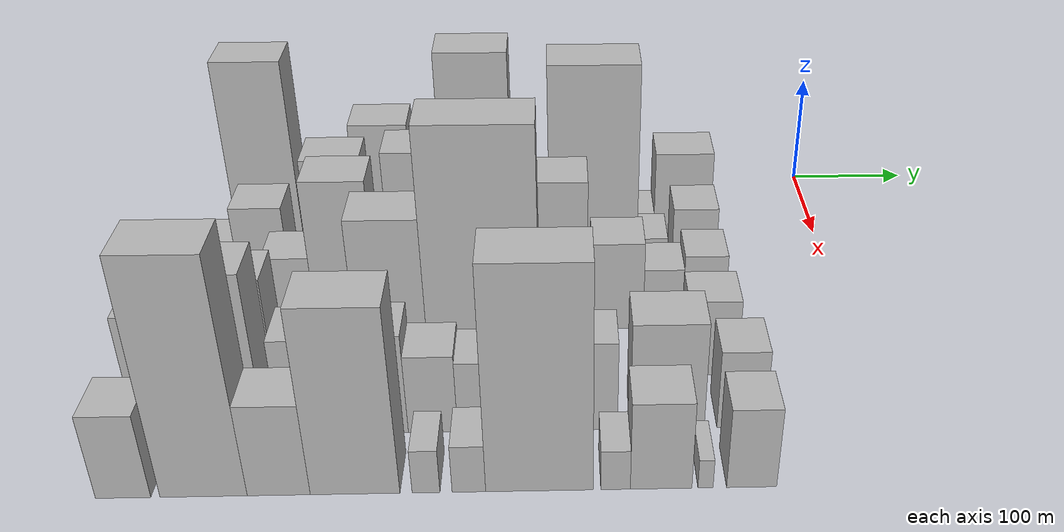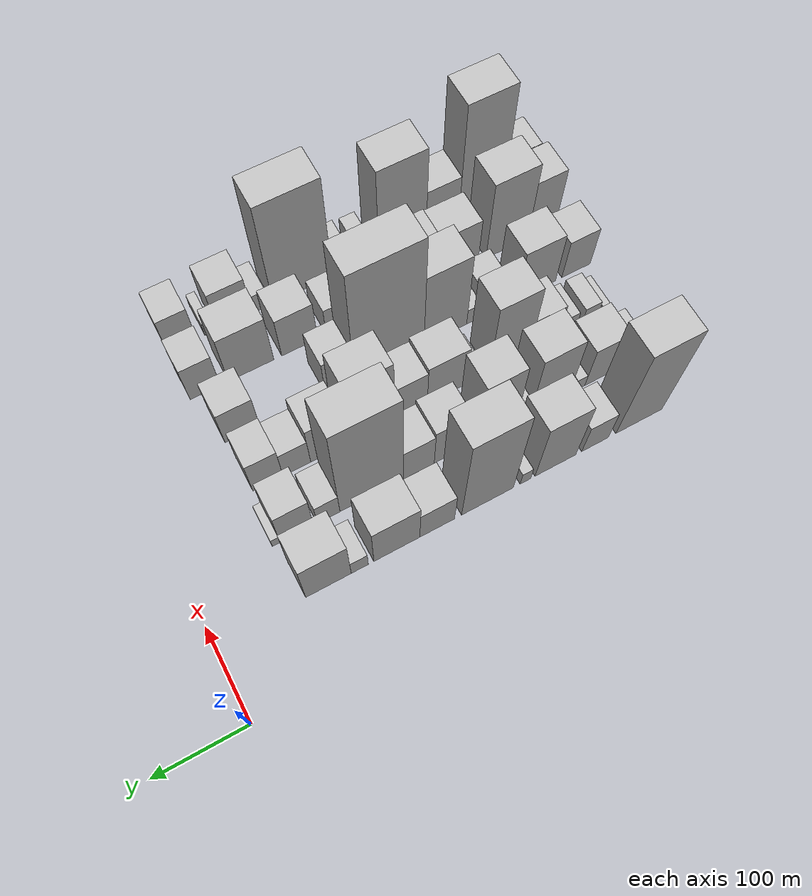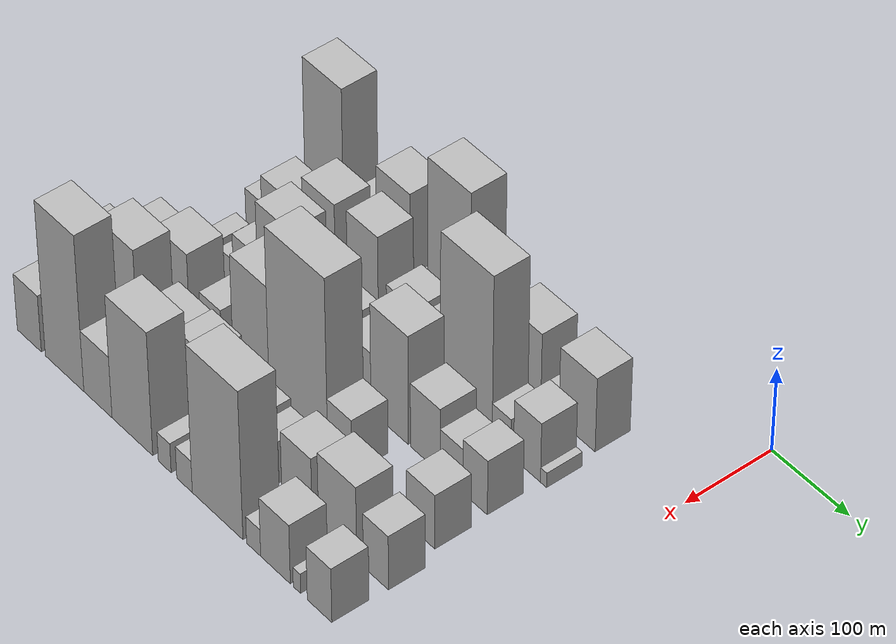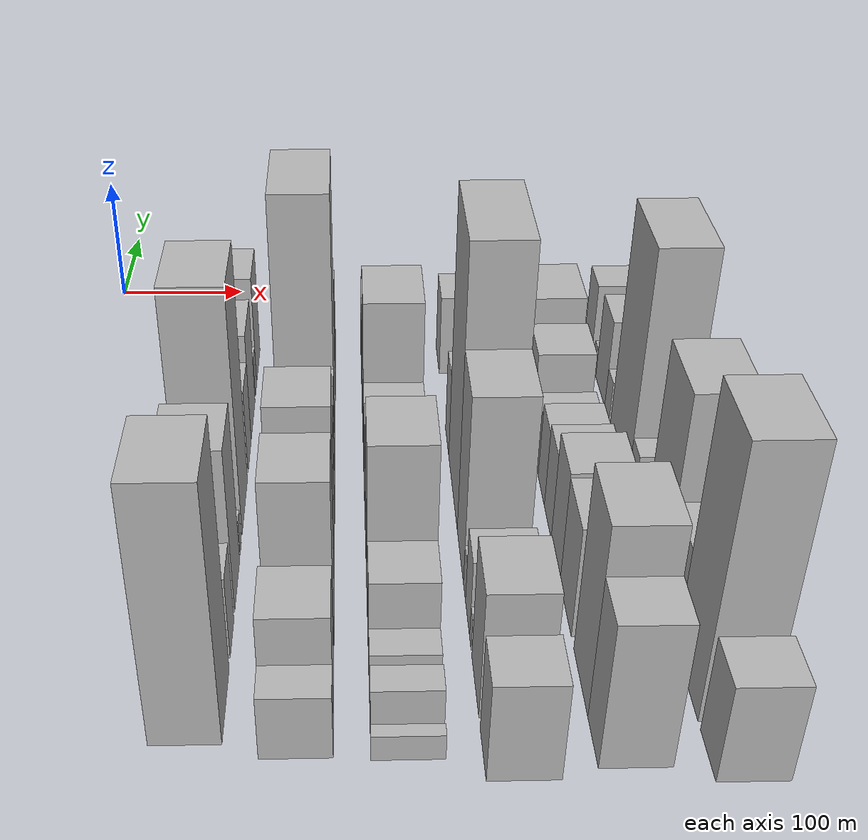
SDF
<sdf version="1.6">
 <world name="default">
  <model name="building_14">
   <static>1</static>
   <pose>100.0000 -473.5683 0 0.000000 0.000000 0.000000</pose>
   <link name="link">
    <pose>0 0 88.50 0 0 0</pose>
    <collision name="collision"><geometry><box><size>40.0000 55.9050 177.0000</size></box></geometry></collision>
    <visual name="visual">
     <cast_shadows>0</cast_shadows>
     <geometry><box><size>40.0000 55.9050 177.0000</size></box></geometry>
     <material>
      <script>
       <uri>model://HANNAS_wall/materials/scripts</uri>
       <uri>model://HANNAS_wall/materials/textures</uri>
       <name>vrc/HANNAS_wall</name>
      </script>
     </material>
    </visual>
   </link>
  </model>
  <model name="building_15">
   <static>1</static>
   <pose>100.0000 -420.7064 0 0.000000 0.000000 0.000000</pose>
   <link name="link">
    <pose>0 0 30.00 0 0 0</pose>
    <collision name="collision"><geometry><box><size>40.0000 31.8189 60.0000</size></box></geometry></collision>
    <visual name="visual">
     <cast_shadows>0</cast_shadows>
     <geometry><box><size>40.0000 31.8189 60.0000</size></box></geometry>
     <material>
      <script>
       <uri>model://HANNAS_wall/materials/scripts</uri>
       <uri>model://HANNAS_wall/materials/textures</uri>
       <name>vrc/HANNAS_wall</name>
      </script>
     </material>
    </visual>
   </link>
  </model>
  <model name="building_16">
   <static>1</static>
   <pose>100.0000 -373.8474 0 0.000000 0.000000 0.000000</pose>
   <link name="link">
    <pose>0 0 60.00 0 0 0</pose>
    <collision name="collision"><geometry><box><size>40.0000 47.8990 120.0000</size></box></geometry></collision>
    <visual name="visual">
     <cast_shadows>0</cast_shadows>
     <geometry><box><size>40.0000 47.8990 120.0000</size></box></geometry>
     <material>
      <script>
       <uri>model://HANNAS_wall/materials/scripts</uri>
       <uri>model://HANNAS_wall/materials/textures</uri>
       <name>vrc/HANNAS_wall</name>
      </script>
     </material>
    </visual>
   </link>
  </model>
  <model name="building_17">
   <static>1</static>
   <pose>100.0000 -338.8018 0 0.000000 0.000000 0.000000</pose>
   <link name="link">
    <pose>0 0 13.50 0 0 0</pose>
    <collision name="collision"><geometry><box><size>40.0000 12.1922 27.0000</size></box></geometry></collision>
    <visual name="visual">
     <cast_shadows>0</cast_shadows>
     <geometry><box><size>40.0000 12.1922 27.0000</size></box></geometry>
     <material>
      <script>
       <uri>model://HANNAS_wall/materials/scripts</uri>
       <uri>model://HANNAS_wall/materials/textures</uri>
       <name>vrc/HANNAS_wall</name>
      </script>
     </material>
    </visual>
   </link>
  </model>
  <model name="building_18">
   <static>1</static>
   <pose>100.0000 -295.1788 0 0.000000 0.000000 0.000000</pose>
   <link name="link">
    <pose>0 0 91.50 0 0 0</pose>
    <collision name="collision"><geometry><box><size>40.0000 59.0539 183.0000</size></box></geometry></collision>
    <visual name="visual">
     <cast_shadows>0</cast_shadows>
     <geometry><box><size>40.0000 59.0539 183.0000</size></box></geometry>
     <material>
      <script>
       <uri>model://HANNAS_wall/materials/scripts</uri>
       <uri>model://HANNAS_wall/materials/textures</uri>
       <name>vrc/HANNAS_wall</name>
      </script>
     </material>
    </visual>
   </link>
  </model>
  <model name="building_19">
   <static>1</static>
   <pose>100.0000 -238.2212 0 0.000000 0.000000 0.000000</pose>
   <link name="link">
    <pose>0 0 33.00 0 0 0</pose>
    <collision name="collision"><geometry><box><size>40.0000 38.8613 66.0000</size></box></geometry></collision>
    <visual name="visual">
     <cast_shadows>0</cast_shadows>
     <geometry><box><size>40.0000 38.8613 66.0000</size></box></geometry>
     <material>
      <script>
       <uri>model://HANNAS_wall/materials/scripts</uri>
       <uri>model://HANNAS_wall/materials/textures</uri>
       <name>vrc/HANNAS_wall</name>
      </script>
     </material>
    </visual>
   </link>
  </model>
  <model name="building_20">
   <static>1</static>
   <pose>100.0000 -193.5843 0 0.000000 0.000000 0.000000</pose>
   <link name="link">
    <pose>0 0 43.50 0 0 0</pose>
    <collision name="collision"><geometry><box><size>40.0000 50.4124 87.0000</size></box></geometry></collision>
    <visual name="visual">
     <cast_shadows>0</cast_shadows>
     <geometry><box><size>40.0000 50.4124 87.0000</size></box></geometry>
     <material>
      <script>
       <uri>model://HANNAS_wall/materials/scripts</uri>
       <uri>model://HANNAS_wall/materials/textures</uri>
       <name>vrc/HANNAS_wall</name>
      </script>
     </material>
    </visual>
   </link>
  </model>
  <model name="building_21">
   <static>1</static>
   <pose>100.0000 -153.1181 0 0.000000 0.000000 0.000000</pose>
   <link name="link">
    <pose>0 0 16.50 0 0 0</pose>
    <collision name="collision"><geometry><box><size>40.0000 18.5201 33.0000</size></box></geometry></collision>
    <visual name="visual">
     <cast_shadows>0</cast_shadows>
     <geometry><box><size>40.0000 18.5201 33.0000</size></box></geometry>
     <material>
      <script>
       <uri>model://HANNAS_wall/materials/scripts</uri>
       <uri>model://HANNAS_wall/materials/textures</uri>
       <name>vrc/HANNAS_wall</name>
      </script>
     </material>
    </visual>
   </link>
  </model>
  <model name="building_22">
   <static>1</static>
   <pose>100.0000 -119.5392 0 0.000000 0.000000 0.000000</pose>
   <link name="link">
    <pose>0 0 45.00 0 0 0</pose>
    <collision name="collision"><geometry><box><size>40.0000 48.6377 90.0000</size></box></geometry></collision>
    <visual name="visual">
     <cast_shadows>0</cast_shadows>
     <geometry><box><size>40.0000 48.6377 90.0000</size></box></geometry>
     <material>
      <script>
       <uri>model://HANNAS_wall/materials/scripts</uri>
       <uri>model://HANNAS_wall/materials/textures</uri>
       <name>vrc/HANNAS_wall</name>
      </script>
     </material>
    </visual>
   </link>
  </model>
  <model name="building_65">
   <static>1</static>
   <pose>160.0000 -500.0455 0 0.000000 0.000000 0.000000</pose>
   <link name="link">
    <pose>0 0 22.50 0 0 0</pose>
    <collision name="collision"><geometry><box><size>40.0000 24.1794 45.0000</size></box></geometry></collision>
    <visual name="visual">
     <cast_shadows>0</cast_shadows>
     <geometry><box><size>40.0000 24.1794 45.0000</size></box></geometry>
     <material>
      <script>
       <uri>model://HANNAS_wall/materials/scripts</uri>
       <uri>model://HANNAS_wall/materials/textures</uri>
       <name>vrc/HANNAS_wall</name>
      </script>
     </material>
    </visual>
   </link>
  </model>
  <model name="building_66">
   <static>1</static>
   <pose>160.0000 -467.1920 0 0.000000 0.000000 0.000000</pose>
   <link name="link">
    <pose>0 0 39.00 0 0 0</pose>
    <collision name="collision"><geometry><box><size>40.0000 41.5276 78.0000</size></box></geometry></collision>
    <visual name="visual">
     <cast_shadows>0</cast_shadows>
     <geometry><box><size>40.0000 41.5276 78.0000</size></box></geometry>
     <material>
      <script>
       <uri>model://HANNAS_wall/materials/scripts</uri>
       <uri>model://HANNAS_wall/materials/textures</uri>
       <name>vrc/HANNAS_wall</name>
      </script>
     </material>
    </visual>
   </link>
  </model>
  <model name="building_67">
   <static>1</static>
   <pose>160.0000 -440.5032 0 0.000000 0.000000 0.000000</pose>
   <link name="link">
    <pose>0 0 12.00 0 0 0</pose>
    <collision name="collision"><geometry><box><size>40.0000 11.8500 24.0000</size></box></geometry></collision>
    <visual name="visual">
     <cast_shadows>0</cast_shadows>
     <geometry><box><size>40.0000 11.8500 24.0000</size></box></geometry>
     <material>
      <script>
       <uri>model://HANNAS_wall/materials/scripts</uri>
       <uri>model://HANNAS_wall/materials/textures</uri>
       <name>vrc/HANNAS_wall</name>
      </script>
     </material>
    </visual>
   </link>
  </model>
  <model name="building_68">
   <static>1</static>
   <pose>160.0000 -404.3620 0 0.000000 0.000000 0.000000</pose>
   <link name="link">
    <pose>0 0 60.00 0 0 0</pose>
    <collision name="collision"><geometry><box><size>40.0000 46.4323 120.0000</size></box></geometry></collision>
    <visual name="visual">
     <cast_shadows>0</cast_shadows>
     <geometry><box><size>40.0000 46.4323 120.0000</size></box></geometry>
     <material>
      <script>
       <uri>model://HANNAS_wall/materials/scripts</uri>
       <uri>model://HANNAS_wall/materials/textures</uri>
       <name>vrc/HANNAS_wall</name>
      </script>
     </material>
    </visual>
   </link>
  </model>
  <model name="building_69">
   <static>1</static>
   <pose>160.0000 -372.5935 0 0.000000 0.000000 0.000000</pose>
   <link name="link">
    <pose>0 0 15.00 0 0 0</pose>
    <collision name="collision"><geometry><box><size>40.0000 17.1047 30.0000</size></box></geometry></collision>
    <visual name="visual">
     <cast_shadows>0</cast_shadows>
     <geometry><box><size>40.0000 17.1047 30.0000</size></box></geometry>
     <material>
      <script>
       <uri>model://HANNAS_wall/materials/scripts</uri>
       <uri>model://HANNAS_wall/materials/textures</uri>
       <name>vrc/HANNAS_wall</name>
      </script>
     </material>
    </visual>
   </link>
  </model>
  <model name="building_70">
   <static>1</static>
   <pose>160.0000 -342.1799 0 0.000000 0.000000 0.000000</pose>
   <link name="link">
    <pose>0 0 63.00 0 0 0</pose>
    <collision name="collision"><geometry><box><size>40.0000 43.7226 126.0000</size></box></geometry></collision>
    <visual name="visual">
     <cast_shadows>0</cast_shadows>
     <geometry><box><size>40.0000 43.7226 126.0000</size></box></geometry>
     <material>
      <script>
       <uri>model://HANNAS_wall/materials/scripts</uri>
       <uri>model://HANNAS_wall/materials/textures</uri>
       <name>vrc/HANNAS_wall</name>
      </script>
     </material>
    </visual>
   </link>
  </model>
  <model name="building_71">
   <static>1</static>
   <pose>160.0000 -314.5269 0 0.000000 0.000000 0.000000</pose>
   <link name="link">
    <pose>0 0 12.00 0 0 0</pose>
    <collision name="collision"><geometry><box><size>40.0000 11.5835 24.0000</size></box></geometry></collision>
    <visual name="visual">
     <cast_shadows>0</cast_shadows>
     <geometry><box><size>40.0000 11.5835 24.0000</size></box></geometry>
     <material>
      <script>
       <uri>model://HANNAS_wall/materials/scripts</uri>
       <uri>model://HANNAS_wall/materials/textures</uri>
       <name>vrc/HANNAS_wall</name>
      </script>
     </material>
    </visual>
   </link>
  </model>
  <model name="building_72">
   <static>1</static>
   <pose>160.0000 -288.5747 0 0.000000 0.000000 0.000000</pose>
   <link name="link">
    <pose>0 0 39.00 0 0 0</pose>
    <collision name="collision"><geometry><box><size>40.0000 40.3210 78.0000</size></box></geometry></collision>
    <visual name="visual">
     <cast_shadows>0</cast_shadows>
     <geometry><box><size>40.0000 40.3210 78.0000</size></box></geometry>
     <material>
      <script>
       <uri>model://HANNAS_wall/materials/scripts</uri>
       <uri>model://HANNAS_wall/materials/textures</uri>
       <name>vrc/HANNAS_wall</name>
      </script>
     </material>
    </visual>
   </link>
  </model>
  <model name="building_73">
   <static>1</static>
   <pose>160.0000 -250.9951 0 0.000000 0.000000 0.000000</pose>
   <link name="link">
    <pose>0 0 34.50 0 0 0</pose>
    <collision name="collision"><geometry><box><size>40.0000 34.8381 69.0000</size></box></geometry></collision>
    <visual name="visual">
     <cast_shadows>0</cast_shadows>
     <geometry><box><size>40.0000 34.8381 69.0000</size></box></geometry>
     <material>
      <script>
       <uri>model://HANNAS_wall/materials/scripts</uri>
       <uri>model://HANNAS_wall/materials/textures</uri>
       <name>vrc/HANNAS_wall</name>
      </script>
     </material>
    </visual>
   </link>
  </model>
  <model name="building_74">
   <static>1</static>
   <pose>160.0000 -198.0732 0 0.000000 0.000000 0.000000</pose>
   <link name="link">
    <pose>0 0 99.00 0 0 0</pose>
    <collision name="collision"><geometry><box><size>40.0000 71.0058 198.0000</size></box></geometry></collision>
    <visual name="visual">
     <cast_shadows>0</cast_shadows>
     <geometry><box><size>40.0000 71.0058 198.0000</size></box></geometry>
     <material>
      <script>
       <uri>model://HANNAS_wall/materials/scripts</uri>
       <uri>model://HANNAS_wall/materials/textures</uri>
       <name>vrc/HANNAS_wall</name>
      </script>
     </material>
    </visual>
   </link>
  </model>
  <model name="building_75">
   <static>1</static>
   <pose>160.0000 -150.0404 0 0.000000 0.000000 0.000000</pose>
   <link name="link">
    <pose>0 0 22.50 0 0 0</pose>
    <collision name="collision"><geometry><box><size>40.0000 25.0598 45.0000</size></box></geometry></collision>
    <visual name="visual">
     <cast_shadows>0</cast_shadows>
     <geometry><box><size>40.0000 25.0598 45.0000</size></box></geometry>
     <material>
      <script>
       <uri>model://HANNAS_wall/materials/scripts</uri>
       <uri>model://HANNAS_wall/materials/textures</uri>
       <name>vrc/HANNAS_wall</name>
      </script>
     </material>
    </visual>
   </link>
  </model>
  <model name="building_76">
   <static>1</static>
   <pose>160.0000 -115.4204 0 0.000000 0.000000 0.000000</pose>
   <link name="link">
    <pose>0 0 36.00 0 0 0</pose>
    <collision name="collision"><geometry><box><size>40.0000 36.1803 72.0000</size></box></geometry></collision>
    <visual name="visual">
     <cast_shadows>0</cast_shadows>
     <geometry><box><size>40.0000 36.1803 72.0000</size></box></geometry>
     <material>
      <script>
       <uri>model://HANNAS_wall/materials/scripts</uri>
       <uri>model://HANNAS_wall/materials/textures</uri>
       <name>vrc/HANNAS_wall</name>
      </script>
     </material>
    </visual>
   </link>
  </model>
  <model name="building_77">
   <static>1</static>
   <pose>160.0000 -93.1796 0 0.000000 0.000000 0.000000</pose>
   <link name="link">
    <pose>0 0 9.00 0 0 0</pose>
    <collision name="collision"><geometry><box><size>40.0000 8.3014 18.0000</size></box></geometry></collision>
    <visual name="visual">
     <cast_shadows>0</cast_shadows>
     <geometry><box><size>40.0000 8.3014 18.0000</size></box></geometry>
     <material>
      <script>
       <uri>model://HANNAS_wall/materials/scripts</uri>
       <uri>model://HANNAS_wall/materials/textures</uri>
       <name>vrc/HANNAS_wall</name>
      </script>
     </material>
    </visual>
   </link>
  </model>
  <model name="building_121">
   <static>1</static>
   <pose>220.0000 -509.9636 0 0.000000 0.000000 0.000000</pose>
   <link name="link">
    <pose>0 0 9.00 0 0 0</pose>
    <collision name="collision"><geometry><box><size>40.0000 8.7788 18.0000</size></box></geometry></collision>
    <visual name="visual">
     <cast_shadows>0</cast_shadows>
     <geometry><box><size>40.0000 8.7788 18.0000</size></box></geometry>
     <material>
      <script>
       <uri>model://HANNAS_wall/materials/scripts</uri>
       <uri>model://HANNAS_wall/materials/textures</uri>
       <name>vrc/HANNAS_wall</name>
      </script>
     </material>
    </visual>
   </link>
  </model>
  <model name="building_122">
   <static>1</static>
   <pose>220.0000 -489.8394 0 0.000000 0.000000 0.000000</pose>
   <link name="link">
    <pose>0 0 18.00 0 0 0</pose>
    <collision name="collision"><geometry><box><size>40.0000 19.4694 36.0000</size></box></geometry></collision>
    <visual name="visual">
     <cast_shadows>0</cast_shadows>
     <geometry><box><size>40.0000 19.4694 36.0000</size></box></geometry>
     <material>
      <script>
       <uri>model://HANNAS_wall/materials/scripts</uri>
       <uri>model://HANNAS_wall/materials/textures</uri>
       <name>vrc/HANNAS_wall</name>
      </script>
     </material>
    </visual>
   </link>
  </model>
  <model name="building_123">
   <static>1</static>
   <pose>220.0000 -462.5780 0 0.000000 0.000000 0.000000</pose>
   <link name="link">
    <pose>0 0 18.00 0 0 0</pose>
    <collision name="collision"><geometry><box><size>40.0000 21.0536 36.0000</size></box></geometry></collision>
    <visual name="visual">
     <cast_shadows>0</cast_shadows>
     <geometry><box><size>40.0000 21.0536 36.0000</size></box></geometry>
     <material>
      <script>
       <uri>model://HANNAS_wall/materials/scripts</uri>
       <uri>model://HANNAS_wall/materials/textures</uri>
       <name>vrc/HANNAS_wall</name>
      </script>
     </material>
    </visual>
   </link>
  </model>
  <model name="building_124">
   <static>1</static>
   <pose>220.0000 -434.0340 0 0.000000 0.000000 0.000000</pose>
   <link name="link">
    <pose>0 0 34.50 0 0 0</pose>
    <collision name="collision"><geometry><box><size>40.0000 36.0343 69.0000</size></box></geometry></collision>
    <visual name="visual">
     <cast_shadows>0</cast_shadows>
     <geometry><box><size>40.0000 36.0343 69.0000</size></box></geometry>
     <material>
      <script>
       <uri>model://HANNAS_wall/materials/scripts</uri>
       <uri>model://HANNAS_wall/materials/textures</uri>
       <name>vrc/HANNAS_wall</name>
      </script>
     </material>
    </visual>
   </link>
  </model>
  <model name="building_125">
   <static>1</static>
   <pose>220.0000 -391.7685 0 0.000000 0.000000 0.000000</pose>
   <link name="link">
    <pose>0 0 67.50 0 0 0</pose>
    <collision name="collision"><geometry><box><size>40.0000 48.4967 135.0000</size></box></geometry></collision>
    <visual name="visual">
     <cast_shadows>0</cast_shadows>
     <geometry><box><size>40.0000 48.4967 135.0000</size></box></geometry>
     <material>
      <script>
       <uri>model://HANNAS_wall/materials/scripts</uri>
       <uri>model://HANNAS_wall/materials/textures</uri>
       <name>vrc/HANNAS_wall</name>
      </script>
     </material>
    </visual>
   </link>
  </model>
  <model name="building_126">
   <static>1</static>
   <pose>220.0000 -349.2514 0 0.000000 0.000000 0.000000</pose>
   <link name="link">
    <pose>0 0 15.00 0 0 0</pose>
    <collision name="collision"><geometry><box><size>40.0000 16.5375 30.0000</size></box></geometry></collision>
    <visual name="visual">
     <cast_shadows>0</cast_shadows>
     <geometry><box><size>40.0000 16.5375 30.0000</size></box></geometry>
     <material>
      <script>
       <uri>model://HANNAS_wall/materials/scripts</uri>
       <uri>model://HANNAS_wall/materials/textures</uri>
       <name>vrc/HANNAS_wall</name>
      </script>
     </material>
    </visual>
   </link>
  </model>
  <model name="building_127">
   <static>1</static>
   <pose>220.0000 -317.3671 0 0.000000 0.000000 0.000000</pose>
   <link name="link">
    <pose>0 0 40.50 0 0 0</pose>
    <collision name="collision"><geometry><box><size>40.0000 47.2311 81.0000</size></box></geometry></collision>
    <visual name="visual">
     <cast_shadows>0</cast_shadows>
     <geometry><box><size>40.0000 47.2311 81.0000</size></box></geometry>
     <material>
      <script>
       <uri>model://HANNAS_wall/materials/scripts</uri>
       <uri>model://HANNAS_wall/materials/textures</uri>
       <name>vrc/HANNAS_wall</name>
      </script>
     </material>
    </visual>
   </link>
  </model>
  <model name="building_128">
   <static>1</static>
   <pose>220.0000 -274.8805 0 0.000000 0.000000 0.000000</pose>
   <link name="link">
    <pose>0 0 36.00 0 0 0</pose>
    <collision name="collision"><geometry><box><size>40.0000 37.7420 72.0000</size></box></geometry></collision>
    <visual name="visual">
     <cast_shadows>0</cast_shadows>
     <geometry><box><size>40.0000 37.7420 72.0000</size></box></geometry>
     <material>
      <script>
       <uri>model://HANNAS_wall/materials/scripts</uri>
       <uri>model://HANNAS_wall/materials/textures</uri>
       <name>vrc/HANNAS_wall</name>
      </script>
     </material>
    </visual>
   </link>
  </model>
  <model name="building_129">
   <static>1</static>
   <pose>220.0000 -230.0912 0 0.000000 0.000000 0.000000</pose>
   <link name="link">
    <pose>0 0 66.00 0 0 0</pose>
    <collision name="collision"><geometry><box><size>40.0000 51.8366 132.0000</size></box></geometry></collision>
    <visual name="visual">
     <cast_shadows>0</cast_shadows>
     <geometry><box><size>40.0000 51.8366 132.0000</size></box></geometry>
     <material>
      <script>
       <uri>model://HANNAS_wall/materials/scripts</uri>
       <uri>model://HANNAS_wall/materials/textures</uri>
       <name>vrc/HANNAS_wall</name>
      </script>
     </material>
    </visual>
   </link>
  </model>
  <model name="building_130">
   <static>1</static>
   <pose>220.0000 -180.8762 0 0.000000 0.000000 0.000000</pose>
   <link name="link">
    <pose>0 0 39.00 0 0 0</pose>
    <collision name="collision"><geometry><box><size>40.0000 40.5934 78.0000</size></box></geometry></collision>
    <visual name="visual">
     <cast_shadows>0</cast_shadows>
     <geometry><box><size>40.0000 40.5934 78.0000</size></box></geometry>
     <material>
      <script>
       <uri>model://HANNAS_wall/materials/scripts</uri>
       <uri>model://HANNAS_wall/materials/textures</uri>
       <name>vrc/HANNAS_wall</name>
      </script>
     </material>
    </visual>
   </link>
  </model>
  <model name="building_131">
   <static>1</static>
   <pose>220.0000 -145.1523 0 0.000000 0.000000 0.000000</pose>
   <link name="link">
    <pose>0 0 27.00 0 0 0</pose>
    <collision name="collision"><geometry><box><size>40.0000 30.8543 54.0000</size></box></geometry></collision>
    <visual name="visual">
     <cast_shadows>0</cast_shadows>
     <geometry><box><size>40.0000 30.8543 54.0000</size></box></geometry>
     <material>
      <script>
       <uri>model://HANNAS_wall/materials/scripts</uri>
       <uri>model://HANNAS_wall/materials/textures</uri>
       <name>vrc/HANNAS_wall</name>
      </script>
     </material>
    </visual>
   </link>
  </model>
  <model name="building_132">
   <static>1</static>
   <pose>220.0000 -113.1384 0 0.000000 0.000000 0.000000</pose>
   <link name="link">
    <pose>0 0 33.00 0 0 0</pose>
    <collision name="collision"><geometry><box><size>40.0000 33.1735 66.0000</size></box></geometry></collision>
    <visual name="visual">
     <cast_shadows>0</cast_shadows>
     <geometry><box><size>40.0000 33.1735 66.0000</size></box></geometry>
     <material>
      <script>
       <uri>model://HANNAS_wall/materials/scripts</uri>
       <uri>model://HANNAS_wall/materials/textures</uri>
       <name>vrc/HANNAS_wall</name>
      </script>
     </material>
    </visual>
   </link>
  </model>
  <model name="building_177">
   <static>1</static>
   <pose>280.0000 -511.5141 0 0.000000 0.000000 0.000000</pose>
   <link name="link">
    <pose>0 0 34.50 0 0 0</pose>
    <collision name="collision"><geometry><box><size>40.0000 36.1940 69.0000</size></box></geometry></collision>
    <visual name="visual">
     <cast_shadows>0</cast_shadows>
     <geometry><box><size>40.0000 36.1940 69.0000</size></box></geometry>
     <material>
      <script>
       <uri>model://HANNAS_wall/materials/scripts</uri>
       <uri>model://HANNAS_wall/materials/textures</uri>
       <name>vrc/HANNAS_wall</name>
      </script>
     </material>
    </visual>
   </link>
  </model>
  <model name="building_178">
   <static>1</static>
   <pose>280.0000 -461.8795 0 0.000000 0.000000 0.000000</pose>
   <link name="link">
    <pose>0 0 45.00 0 0 0</pose>
    <collision name="collision"><geometry><box><size>40.0000 47.0751 90.0000</size></box></geometry></collision>
    <visual name="visual">
     <cast_shadows>0</cast_shadows>
     <geometry><box><size>40.0000 47.0751 90.0000</size></box></geometry>
     <material>
      <script>
       <uri>model://HANNAS_wall/materials/scripts</uri>
       <uri>model://HANNAS_wall/materials/textures</uri>
       <name>vrc/HANNAS_wall</name>
      </script>
     </material>
    </visual>
   </link>
  </model>
  <model name="building_179">
   <static>1</static>
   <pose>280.0000 -427.7525 0 0.000000 0.000000 0.000000</pose>
   <link name="link">
    <pose>0 0 12.00 0 0 0</pose>
    <collision name="collision"><geometry><box><size>40.0000 11.1790 24.0000</size></box></geometry></collision>
    <visual name="visual">
     <cast_shadows>0</cast_shadows>
     <geometry><box><size>40.0000 11.1790 24.0000</size></box></geometry>
     <material>
      <script>
       <uri>model://HANNAS_wall/materials/scripts</uri>
       <uri>model://HANNAS_wall/materials/textures</uri>
       <name>vrc/HANNAS_wall</name>
      </script>
     </material>
    </visual>
   </link>
  </model>
  <model name="building_180">
   <static>1</static>
   <pose>280.0000 -406.7230 0 0.000000 0.000000 0.000000</pose>
   <link name="link">
    <pose>0 0 28.50 0 0 0</pose>
    <collision name="collision"><geometry><box><size>40.0000 30.8799 57.0000</size></box></geometry></collision>
    <visual name="visual">
     <cast_shadows>0</cast_shadows>
     <geometry><box><size>40.0000 30.8799 57.0000</size></box></geometry>
     <material>
      <script>
       <uri>model://HANNAS_wall/materials/scripts</uri>
       <uri>model://HANNAS_wall/materials/textures</uri>
       <name>vrc/HANNAS_wall</name>
      </script>
     </material>
    </visual>
   </link>
  </model>
  <model name="building_181">
   <static>1</static>
   <pose>280.0000 -382.9948 0 0.000000 0.000000 0.000000</pose>
   <link name="link">
    <pose>0 0 15.00 0 0 0</pose>
    <collision name="collision"><geometry><box><size>40.0000 16.5764 30.0000</size></box></geometry></collision>
    <visual name="visual">
     <cast_shadows>0</cast_shadows>
     <geometry><box><size>40.0000 16.5764 30.0000</size></box></geometry>
     <material>
      <script>
       <uri>model://HANNAS_wall/materials/scripts</uri>
       <uri>model://HANNAS_wall/materials/textures</uri>
       <name>vrc/HANNAS_wall</name>
      </script>
     </material>
    </visual>
   </link>
  </model>
  <model name="building_182">
   <static>1</static>
   <pose>280.0000 -348.9423 0 0.000000 0.000000 0.000000</pose>
   <link name="link">
    <pose>0 0 69.00 0 0 0</pose>
    <collision name="collision"><geometry><box><size>40.0000 51.5287 138.0000</size></box></geometry></collision>
    <visual name="visual">
     <cast_shadows>0</cast_shadows>
     <geometry><box><size>40.0000 51.5287 138.0000</size></box></geometry>
     <material>
      <script>
       <uri>model://HANNAS_wall/materials/scripts</uri>
       <uri>model://HANNAS_wall/materials/textures</uri>
       <name>vrc/HANNAS_wall</name>
      </script>
     </material>
    </visual>
   </link>
  </model>
  <model name="building_183">
   <static>1</static>
   <pose>280.0000 -282.0756 0 0.000000 0.000000 0.000000</pose>
   <link name="link">
    <pose>0 0 105.00 0 0 0</pose>
    <collision name="collision"><geometry><box><size>40.0000 82.2047 210.0000</size></box></geometry></collision>
    <visual name="visual">
     <cast_shadows>0</cast_shadows>
     <geometry><box><size>40.0000 82.2047 210.0000</size></box></geometry>
     <material>
      <script>
       <uri>model://HANNAS_wall/materials/scripts</uri>
       <uri>model://HANNAS_wall/materials/textures</uri>
       <name>vrc/HANNAS_wall</name>
      </script>
     </material>
    </visual>
   </link>
  </model>
  <model name="building_184">
   <static>1</static>
   <pose>280.0000 -224.0942 0 0.000000 0.000000 0.000000</pose>
   <link name="link">
    <pose>0 0 33.00 0 0 0</pose>
    <collision name="collision"><geometry><box><size>40.0000 33.7580 66.0000</size></box></geometry></collision>
    <visual name="visual">
     <cast_shadows>0</cast_shadows>
     <geometry><box><size>40.0000 33.7580 66.0000</size></box></geometry>
     <material>
      <script>
       <uri>model://HANNAS_wall/materials/scripts</uri>
       <uri>model://HANNAS_wall/materials/textures</uri>
       <name>vrc/HANNAS_wall</name>
      </script>
     </material>
    </visual>
   </link>
  </model>
  <model name="building_185">
   <static>1</static>
   <pose>280.0000 -113.2171 0 0.000000 0.000000 0.000000</pose>
   <link name="link">
    <pose>0 0 33.00 0 0 0</pose>
    <collision name="collision"><geometry><box><size>40.0000 38.6654 66.0000</size></box></geometry></collision>
    <visual name="visual">
     <cast_shadows>0</cast_shadows>
     <geometry><box><size>40.0000 38.6654 66.0000</size></box></geometry>
     <material>
      <script>
       <uri>model://HANNAS_wall/materials/scripts</uri>
       <uri>model://HANNAS_wall/materials/textures</uri>
       <name>vrc/HANNAS_wall</name>
      </script>
     </material>
    </visual>
   </link>
  </model>
  <model name="building_228">
   <static>1</static>
   <pose>340.0000 -504.5596 0 0.000000 0.000000 0.000000</pose>
   <link name="link">
    <pose>0 0 51.00 0 0 0</pose>
    <collision name="collision"><geometry><box><size>40.0000 35.8553 102.0000</size></box></geometry></collision>
    <visual name="visual">
     <cast_shadows>0</cast_shadows>
     <geometry><box><size>40.0000 35.8553 102.0000</size></box></geometry>
     <material>
      <script>
       <uri>model://HANNAS_wall/materials/scripts</uri>
       <uri>model://HANNAS_wall/materials/textures</uri>
       <name>vrc/HANNAS_wall</name>
      </script>
     </material>
    </visual>
   </link>
  </model>
  <model name="building_229">
   <static>1</static>
   <pose>340.0000 -460.0481 0 0.000000 0.000000 0.000000</pose>
   <link name="link">
    <pose>0 0 67.50 0 0 0</pose>
    <collision name="collision"><geometry><box><size>40.0000 53.1675 135.0000</size></box></geometry></collision>
    <visual name="visual">
     <cast_shadows>0</cast_shadows>
     <geometry><box><size>40.0000 53.1675 135.0000</size></box></geometry>
     <material>
      <script>
       <uri>model://HANNAS_wall/materials/scripts</uri>
       <uri>model://HANNAS_wall/materials/textures</uri>
       <name>vrc/HANNAS_wall</name>
      </script>
     </material>
    </visual>
   </link>
  </model>
  <model name="building_230">
   <static>1</static>
   <pose>340.0000 -399.4852 0 0.000000 0.000000 0.000000</pose>
   <link name="link">
    <pose>0 0 40.50 0 0 0</pose>
    <collision name="collision"><geometry><box><size>40.0000 47.9582 81.0000</size></box></geometry></collision>
    <visual name="visual">
     <cast_shadows>0</cast_shadows>
     <geometry><box><size>40.0000 47.9582 81.0000</size></box></geometry>
     <material>
      <script>
       <uri>model://HANNAS_wall/materials/scripts</uri>
       <uri>model://HANNAS_wall/materials/textures</uri>
       <name>vrc/HANNAS_wall</name>
      </script>
     </material>
    </visual>
   </link>
  </model>
  <model name="building_231">
   <static>1</static>
   <pose>340.0000 -354.4752 0 0.000000 0.000000 0.000000</pose>
   <link name="link">
    <pose>0 0 42.00 0 0 0</pose>
    <collision name="collision"><geometry><box><size>40.0000 42.0619 84.0000</size></box></geometry></collision>
    <visual name="visual">
     <cast_shadows>0</cast_shadows>
     <geometry><box><size>40.0000 42.0619 84.0000</size></box></geometry>
     <material>
      <script>
       <uri>model://HANNAS_wall/materials/scripts</uri>
       <uri>model://HANNAS_wall/materials/textures</uri>
       <name>vrc/HANNAS_wall</name>
      </script>
     </material>
    </visual>
   </link>
  </model>
  <model name="building_232">
   <static>1</static>
   <pose>340.0000 -316.1703 0 0.000000 0.000000 0.000000</pose>
   <link name="link">
    <pose>0 0 33.00 0 0 0</pose>
    <collision name="collision"><geometry><box><size>40.0000 34.5479 66.0000</size></box></geometry></collision>
    <visual name="visual">
     <cast_shadows>0</cast_shadows>
     <geometry><box><size>40.0000 34.5479 66.0000</size></box></geometry>
     <material>
      <script>
       <uri>model://HANNAS_wall/materials/scripts</uri>
       <uri>model://HANNAS_wall/materials/textures</uri>
       <name>vrc/HANNAS_wall</name>
      </script>
     </material>
    </visual>
   </link>
  </model>
  <model name="building_233">
   <static>1</static>
   <pose>340.0000 -282.2058 0 0.000000 0.000000 0.000000</pose>
   <link name="link">
    <pose>0 0 30.00 0 0 0</pose>
    <collision name="collision"><geometry><box><size>40.0000 33.3810 60.0000</size></box></geometry></collision>
    <visual name="visual">
     <cast_shadows>0</cast_shadows>
     <geometry><box><size>40.0000 33.3810 60.0000</size></box></geometry>
     <material>
      <script>
       <uri>model://HANNAS_wall/materials/scripts</uri>
       <uri>model://HANNAS_wall/materials/textures</uri>
       <name>vrc/HANNAS_wall</name>
      </script>
     </material>
    </visual>
   </link>
  </model>
  <model name="building_234">
   <static>1</static>
   <pose>340.0000 -252.0680 0 0.000000 0.000000 0.000000</pose>
   <link name="link">
    <pose>0 0 25.50 0 0 0</pose>
    <collision name="collision"><geometry><box><size>40.0000 26.8947 51.0000</size></box></geometry></collision>
    <visual name="visual">
     <cast_shadows>0</cast_shadows>
     <geometry><box><size>40.0000 26.8947 51.0000</size></box></geometry>
     <material>
      <script>
       <uri>model://HANNAS_wall/materials/scripts</uri>
       <uri>model://HANNAS_wall/materials/textures</uri>
       <name>vrc/HANNAS_wall</name>
      </script>
     </material>
    </visual>
   </link>
  </model>
  <model name="building_235">
   <static>1</static>
   <pose>340.0000 -207.5705 0 0.000000 0.000000 0.000000</pose>
   <link name="link">
    <pose>0 0 37.50 0 0 0</pose>
    <collision name="collision"><geometry><box><size>40.0000 42.1003 75.0000</size></box></geometry></collision>
    <visual name="visual">
     <cast_shadows>0</cast_shadows>
     <geometry><box><size>40.0000 42.1003 75.0000</size></box></geometry>
     <material>
      <script>
       <uri>model://HANNAS_wall/materials/scripts</uri>
       <uri>model://HANNAS_wall/materials/textures</uri>
       <name>vrc/HANNAS_wall</name>
      </script>
     </material>
    </visual>
   </link>
  </model>
  <model name="building_236">
   <static>1</static>
   <pose>340.0000 -151.4125 0 0.000000 0.000000 0.000000</pose>
   <link name="link">
    <pose>0 0 45.00 0 0 0</pose>
    <collision name="collision"><geometry><box><size>40.0000 52.2157 90.0000</size></box></geometry></collision>
    <visual name="visual">
     <cast_shadows>0</cast_shadows>
     <geometry><box><size>40.0000 52.2157 90.0000</size></box></geometry>
     <material>
      <script>
       <uri>model://HANNAS_wall/materials/scripts</uri>
       <uri>model://HANNAS_wall/materials/textures</uri>
       <name>vrc/HANNAS_wall</name>
      </script>
     </material>
    </visual>
   </link>
  </model>
  <model name="building_237">
   <static>1</static>
   <pose>340.0000 -99.2406 0 0.000000 0.000000 0.000000</pose>
   <link name="link">
    <pose>0 0 33.00 0 0 0</pose>
    <collision name="collision"><geometry><box><size>40.0000 34.1282 66.0000</size></box></geometry></collision>
    <visual name="visual">
     <cast_shadows>0</cast_shadows>
     <geometry><box><size>40.0000 34.1282 66.0000</size></box></geometry>
     <material>
      <script>
       <uri>model://HANNAS_wall/materials/scripts</uri>
       <uri>model://HANNAS_wall/materials/textures</uri>
       <name>vrc/HANNAS_wall</name>
      </script>
     </material>
    </visual>
   </link>
  </model>
  <model name="building_279">
   <static>1</static>
   <pose>400.0000 -514.8514 0 0.000000 0.000000 0.000000</pose>
   <link name="link">
    <pose>0 0 34.50 0 0 0</pose>
    <collision name="collision"><geometry><box><size>40.0000 36.1279 69.0000</size></box></geometry></collision>
    <visual name="visual">
     <cast_shadows>0</cast_shadows>
     <geometry><box><size>40.0000 36.1279 69.0000</size></box></geometry>
     <material>
      <script>
       <uri>model://HANNAS_wall/materials/scripts</uri>
       <uri>model://HANNAS_wall/materials/textures</uri>
       <name>vrc/HANNAS_wall</name>
      </script>
     </material>
    </visual>
   </link>
  </model>
  <model name="building_280">
   <static>1</static>
   <pose>400.0000 -462.2120 0 0.000000 0.000000 0.000000</pose>
   <link name="link">
    <pose>0 0 94.50 0 0 0</pose>
    <collision name="collision"><geometry><box><size>40.0000 57.1510 189.0000</size></box></geometry></collision>
    <visual name="visual">
     <cast_shadows>0</cast_shadows>
     <geometry><box><size>40.0000 57.1510 189.0000</size></box></geometry>
     <material>
      <script>
       <uri>model://HANNAS_wall/materials/scripts</uri>
       <uri>model://HANNAS_wall/materials/textures</uri>
       <name>vrc/HANNAS_wall</name>
      </script>
     </material>
    </visual>
   </link>
  </model>
  <model name="building_281">
   <static>1</static>
   <pose>400.0000 -412.9595 0 0.000000 0.000000 0.000000</pose>
   <link name="link">
    <pose>0 0 37.50 0 0 0</pose>
    <collision name="collision"><geometry><box><size>40.0000 41.3539 75.0000</size></box></geometry></collision>
    <visual name="visual">
     <cast_shadows>0</cast_shadows>
     <geometry><box><size>40.0000 41.3539 75.0000</size></box></geometry>
     <material>
      <script>
       <uri>model://HANNAS_wall/materials/scripts</uri>
       <uri>model://HANNAS_wall/materials/textures</uri>
       <name>vrc/HANNAS_wall</name>
      </script>
     </material>
    </visual>
   </link>
  </model>
  <model name="building_282">
   <static>1</static>
   <pose>400.0000 -362.7847 0 0.000000 0.000000 0.000000</pose>
   <link name="link">
    <pose>0 0 75.00 0 0 0</pose>
    <collision name="collision"><geometry><box><size>40.0000 58.9958 150.0000</size></box></geometry></collision>
    <visual name="visual">
     <cast_shadows>0</cast_shadows>
     <geometry><box><size>40.0000 58.9958 150.0000</size></box></geometry>
     <material>
      <script>
       <uri>model://HANNAS_wall/materials/scripts</uri>
       <uri>model://HANNAS_wall/materials/textures</uri>
       <name>vrc/HANNAS_wall</name>
      </script>
     </material>
    </visual>
   </link>
  </model>
  <model name="building_283">
   <static>1</static>
   <pose>400.0000 -316.1030 0 0.000000 0.000000 0.000000</pose>
   <link name="link">
    <pose>0 0 18.00 0 0 0</pose>
    <collision name="collision"><geometry><box><size>40.0000 18.3675 36.0000</size></box></geometry></collision>
    <visual name="visual">
     <cast_shadows>0</cast_shadows>
     <geometry><box><size>40.0000 18.3675 36.0000</size></box></geometry>
     <material>
      <script>
       <uri>model://HANNAS_wall/materials/scripts</uri>
       <uri>model://HANNAS_wall/materials/textures</uri>
       <name>vrc/HANNAS_wall</name>
      </script>
     </material>
    </visual>
   </link>
  </model>
  <model name="building_284">
   <static>1</static>
   <pose>400.0000 -287.8249 0 0.000000 0.000000 0.000000</pose>
   <link name="link">
    <pose>0 0 19.50 0 0 0</pose>
    <collision name="collision"><geometry><box><size>40.0000 22.1888 39.0000</size></box></geometry></collision>
    <visual name="visual">
     <cast_shadows>0</cast_shadows>
     <geometry><box><size>40.0000 22.1888 39.0000</size></box></geometry>
     <material>
      <script>
       <uri>model://HANNAS_wall/materials/scripts</uri>
       <uri>model://HANNAS_wall/materials/textures</uri>
       <name>vrc/HANNAS_wall</name>
      </script>
     </material>
    </visual>
   </link>
  </model>
  <model name="building_285">
   <static>1</static>
   <pose>400.0000 -241.1146 0 0.000000 0.000000 0.000000</pose>
   <link name="link">
    <pose>0 0 90.00 0 0 0</pose>
    <collision name="collision"><geometry><box><size>40.0000 71.2317 180.0000</size></box></geometry></collision>
    <visual name="visual">
     <cast_shadows>0</cast_shadows>
     <geometry><box><size>40.0000 71.2317 180.0000</size></box></geometry>
     <material>
      <script>
       <uri>model://HANNAS_wall/materials/scripts</uri>
       <uri>model://HANNAS_wall/materials/textures</uri>
       <name>vrc/HANNAS_wall</name>
      </script>
     </material>
    </visual>
   </link>
  </model>
  <model name="building_286">
   <static>1</static>
   <pose>400.0000 -190.7044 0 0.000000 0.000000 0.000000</pose>
   <link name="link">
    <pose>0 0 16.50 0 0 0</pose>
    <collision name="collision"><geometry><box><size>40.0000 19.5888 33.0000</size></box></geometry></collision>
    <visual name="visual">
     <cast_shadows>0</cast_shadows>
     <geometry><box><size>40.0000 19.5888 33.0000</size></box></geometry>
     <material>
      <script>
       <uri>model://HANNAS_wall/materials/scripts</uri>
       <uri>model://HANNAS_wall/materials/textures</uri>
       <name>vrc/HANNAS_wall</name>
      </script>
     </material>
    </visual>
   </link>
  </model>
  <model name="building_287">
   <static>1</static>
   <pose>400.0000 -160.4358 0 0.000000 0.000000 0.000000</pose>
   <link name="link">
    <pose>0 0 36.00 0 0 0</pose>
    <collision name="collision"><geometry><box><size>40.0000 40.9484 72.0000</size></box></geometry></collision>
    <visual name="visual">
     <cast_shadows>0</cast_shadows>
     <geometry><box><size>40.0000 40.9484 72.0000</size></box></geometry>
     <material>
      <script>
       <uri>model://HANNAS_wall/materials/scripts</uri>
       <uri>model://HANNAS_wall/materials/textures</uri>
       <name>vrc/HANNAS_wall</name>
      </script>
     </material>
    </visual>
   </link>
  </model>
  <model name="building_288">
   <static>1</static>
   <pose>400.0000 -130.9160 0 0.000000 0.000000 0.000000</pose>
   <link name="link">
    <pose>0 0 12.00 0 0 0</pose>
    <collision name="collision"><geometry><box><size>40.0000 10.0912 24.0000</size></box></geometry></collision>
    <visual name="visual">
     <cast_shadows>0</cast_shadows>
     <geometry><box><size>40.0000 10.0912 24.0000</size></box></geometry>
     <material>
      <script>
       <uri>model://HANNAS_wall/materials/scripts</uri>
       <uri>model://HANNAS_wall/materials/textures</uri>
       <name>vrc/HANNAS_wall</name>
      </script>
     </material>
    </visual>
   </link>
  </model>
  <model name="building_289">
   <static>1</static>
   <pose>400.0000 -100.1725 0 0.000000 0.000000 0.000000</pose>
   <link name="link">
    <pose>0 0 33.00 0 0 0</pose>
    <collision name="collision"><geometry><box><size>40.0000 33.3960 66.0000</size></box></geometry></collision>
    <visual name="visual">
     <cast_shadows>0</cast_shadows>
     <geometry><box><size>40.0000 33.3960 66.0000</size></box></geometry>
     <material>
      <script>
       <uri>model://HANNAS_wall/materials/scripts</uri>
       <uri>model://HANNAS_wall/materials/textures</uri>
       <name>vrc/HANNAS_wall</name>
      </script>
     </material>
    </visual>
   </link>
  </model>
 </world>
</sdf>
